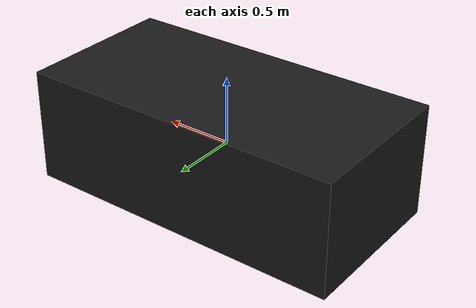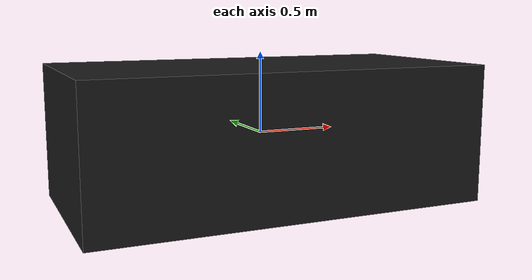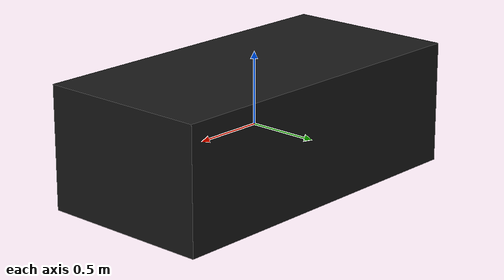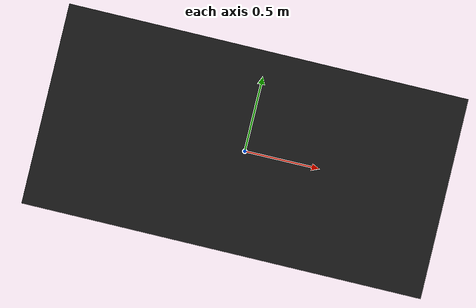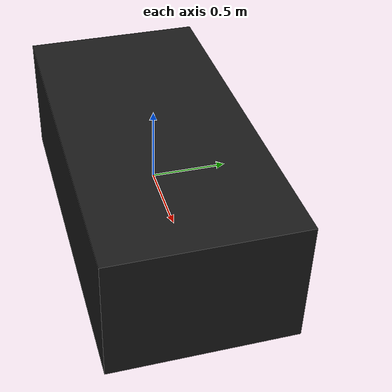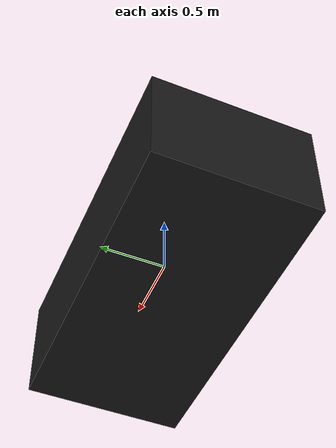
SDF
<?xml version="1.0" ?>
<sdf version="1.6">
  <model name="optical_table">
    <static>true</static>

    <link name="optical_table_link">

      <visual name="optical_table_visual">
        <!-- Pose removed as it is now defined in the world file -->
        <geometry>
          <box>
            <size> 2.4384 1.2192 0.85 </size>
          </box>
        </geometry>
        <material>
          <ambient>0.0 0.0 0.0 1.0</ambient>
          <diffuse>0.1 0.1 0.1 1.0</diffuse>
        </material>
      </visual>

      <collision name="optical_table_collision">
        <!-- Pose removed as it is now defined in the world file -->
        <geometry>
          <box>
            <size> 2.4384 1.2192 0.84455 </size>
          </box>
        </geometry>
      </collision>

    </link>

    <link name="corner_link">
      <pose>0 0 0 0 0 0</pose>
    </link>

    <plugin
      filename="libTFPublisherPlugin.so"
      name="aprs_plugins::TFPublisherPlugin">
      <base_link>optical_table_link</base_link>
      <static>true</static>
      <child link="corner_link" frame="corner_frame"/>

    </plugin>
  </model>
</sdf>
